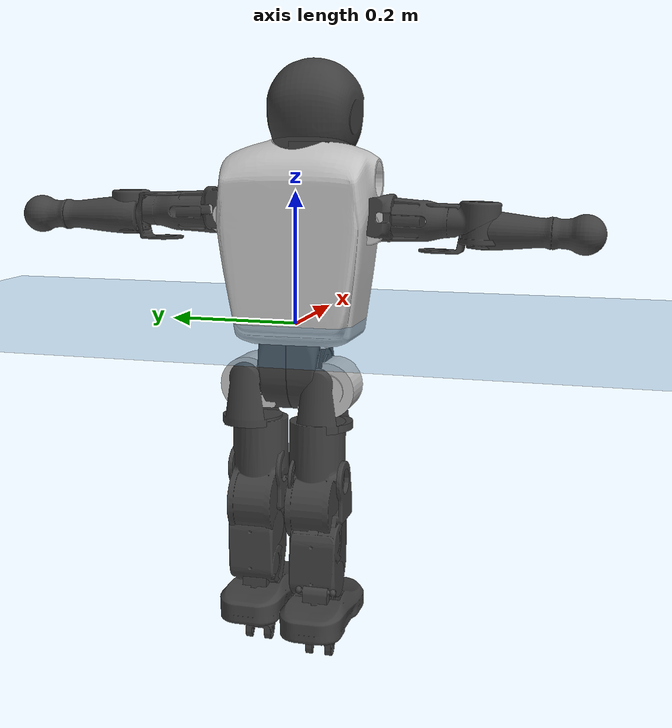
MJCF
<mujoco model="T1">
  <compiler angle="radian" assetdir="assets" balanceinertia="true" inertiafromgeom="false"/>

  <option timestep="0.005" density="1.2" viscosity="2e-05"/>

  <size nkey="1"/>

  <visual>
    <quality shadowsize="8192"/>
    <map shadowclip="0.5"/>
  </visual>

  <default>
    <default class="/">
      <joint armature="0.01" damping="0.01" frictionloss="0.1"/>
      <geom contype="0" conaffinity="0" group="1" solref="-1000 -80"/>
      <site size="0.01 0.005 0.005" group="5"/>
      <general forcelimited="true" biastype="affine" gainprm="25" biasprm="0 -25 -0.6"/>
      <default class="t1">
        <geom rgba="0.25 0.25 0.25 1"/>
        <default class="visual">
          <geom type="mesh" group="2"/>
        </default>
        <default class="collision">
          <geom group="3"/>
        </default>
        <default class="foot">
          <geom size="0.1115 0.05 0.015" type="box" condim="6" group="4" priority="1" solimp="0.015 1 0.015"/>
        </default>
        <default class="reward_collision_sphere">
          <geom group="5" rgba="1 0 0 1"/>
        </default>
      </default>
    </default>
  </default>

  <asset>
    <texture type="skybox" colorspace="auto" name="//unnamed_texture_0" builtin="gradient" rgb1="0.95 0.95 0.95" rgb2="0.95 0.95 0.95" width="100" height="600"/>
    <texture type="2d" colorspace="auto" name="texplane" builtin="checker" rgb1="0.345 0.575 0.748" rgb2="0.345 0.575 0.748" markrgb="1 1 1" width="512" height="512"/>
    <material name="MatPlane" class="/" texture="texplane" texuniform="true" texrepeat="2 2" specular="0.9"/>
    <mesh name="Trunk" class="/" file="Trunk.stl"/>
    <mesh name="H1" class="/" file="H1.stl"/>
    <mesh name="H2" class="/" file="H2.stl"/>
    <mesh name="AL1" class="/" file="AL1.stl"/>
    <mesh name="AL2" class="/" file="AL2.stl"/>
    <mesh name="AL3" class="/" file="AL3.stl"/>
    <mesh name="left_hand_link" class="/" file="left_hand_link.stl"/>
    <mesh name="AR1" class="/" file="AR1.stl"/>
    <mesh name="AR2" class="/" file="AR2.stl"/>
    <mesh name="AR3" class="/" file="AR3.stl"/>
    <mesh name="right_hand_link" class="/" file="right_hand_link.stl"/>
    <mesh name="Waist" class="/" file="Waist.stl"/>
    <mesh name="Hip_Pitch_Left" class="/" file="Hip_Pitch_Left.stl"/>
    <mesh name="Hip_Roll_Left" class="/" file="Hip_Roll_Left.stl"/>
    <mesh name="Hip_Yaw_Left" class="/" file="Hip_Yaw_Left.stl"/>
    <mesh name="Shank_Left" class="/" file="Shank_Left.stl"/>
    <mesh name="Ankle_Cross_Left" class="/" file="Ankle_Cross_Left.stl"/>
    <mesh name="left_foot_link" class="/" file="left_foot_link.stl"/>
    <mesh name="Hip_Pitch_Right" class="/" file="Hip_Pitch_Right.stl"/>
    <mesh name="Hip_Roll_Right" class="/" file="Hip_Roll_Right.stl"/>
    <mesh name="Hip_Yaw_Right" class="/" file="Hip_Yaw_Right.stl"/>
    <mesh name="Shank_Right" class="/" file="Shank_Right.stl"/>
    <mesh name="Ankle_Cross_Right" class="/" file="Ankle_Cross_Right.stl"/>
    <mesh name="right_foot_link" class="/" file="right_foot_link.stl"/>
  </asset>

  <worldbody>
    <geom name="floor" class="/" size="100 100 0.125" type="plane" group="0" material="MatPlane"/>
    <light name="toplight_shadow" class="/" pos="0 0 5" dir="0.0990148 0.0990148 -0.990148" type="directional" ambient="0.04 0.04 0.04" diffuse="0.55 0.55 0.55" specular="0.12 0.12 0.12"/>
    <light name="toplight_fill" class="/" pos="0 0 5" dir="0.0990148 0.0990148 -0.990148" type="directional" castshadow="false" ambient="0.04 0.04 0.04" diffuse="0.3 0.3 0.3" specular="0.08 0.08 0.08"/>
    <body name="trunk" childclass="t1" pos="-0.000757954 0.00585153 -0.00127092" quat="0.999983 -0.00229935 0.00506323 0.0016495">
      <inertial pos="0.055403 0.00945716 0.0779004" quat="0.999947 -0.00207625 -0.0100498 7.14439e-05" mass="4.84194" diaginertia="0.0401786 0.00783086 0.0101062"/>
      <joint name="//unnamed_joint_0" type="free" armature="0" damping="0" frictionloss="0"/>
      <geom name="//unnamed_geom_1" class="visual" rgba="0.76 0.76 0.76 1" mesh="Trunk"/>
      <geom name="//unnamed_geom_2" class="collision" size="0.0539002 0.0718669 0.1078" pos="0.0505942 0 0.082706" type="box"/>
      <geom name="//unnamed_geom_3" class="reward_collision_sphere" size="0.082647" pos="0.0505942 0 0.0689217"/>
      <geom name="//unnamed_geom_4" class="reward_collision_sphere" size="0.01078" pos="0.0505942 0.0530022 0"/>
      <geom name="//unnamed_geom_5" class="reward_collision_sphere" size="0.01078" pos="0.0505942 -0.0530022 0"/>
      <geom name="//unnamed_geom_6" class="reward_collision_sphere" size="0.01078" pos="0.0505942 0.0667204 0.124059"/>
      <geom name="//unnamed_geom_7" class="reward_collision_sphere" size="0.01078" pos="0.0505942 -0.0667204 0.124059"/>
      <site name="imu" pos="-0.0404279 -0.0108641 0.0405795" size="0.00718669"/>
      <camera name="track" pos="0 -1.24711 0" quat="0.707107 0.707107 0 0" mode="trackcom"/>
      <camera name="ego_camera" pos="0.102875 0 0.289471" quat="-0.5 -0.5 0.5 0.5"/>
      <body name="H1" pos="0.0566372 -0.00557253 0.164795" quat="0.999997 0.000452557 0.000631313 -0.00220967">
        <inertial pos="0.0058927 -0.0132857 0.0342219" quat="0.785045 -0.0194358 0.0460971 0.617416" mass="0.172222" diaginertia="0.000108293 2.3387e-05 2.99072e-05"/>
        <joint name="AAHead_yaw" pos="0 0 0" axis="-0.0427049 0.0381316 0.99836" range="-1.51152 1.59728" armature="0.00960143" damping="0" frictionloss="0.0669514"/>
        <geom name="//unnamed_geom_8" class="visual" mesh="H1"/>
        <body name="H2" pos="-0.00801164 -0.0117533 0.0463908" quat="1 0.000514849 -0.000290176 0.000140378">
          <inertial pos="0.00293532 -0.0101612 0.0709692" quat="0.988155 0.103615 -0.0798153 -0.0802657" mass="0.237417" diaginertia="0.000752914 0.000173694 0.000270521"/>
          <joint name="Head_pitch" pos="0 0 0" axis="-0.0115424 -0.999726 0.0203723" range="-1.24104 0.338773" armature="0.0113803" damping="0.00342351" frictionloss="0.0228917"/>
          <geom name="//unnamed_geom_9" class="visual" mesh="H2"/>
          <geom name="//unnamed_geom_10" class="collision" size="0.0574935" pos="0.00843236 0 0.0758139"/>
          <geom name="//unnamed_geom_11" class="reward_collision_sphere" size="0.0646802" pos="0.0168647 0 0.0689217"/>
        </body>
      </body>
      <body name="AL1" pos="0.0537742 0.067282 0.163093" quat="1 -0.000244717 0.000354594 0.000145715">
        <inertial pos="0.0113476 0.0278502 0.00172308" quat="0.504122 0.495428 -0.50422 0.496159" mass="0.19634" diaginertia="0.000602408 0.000122703 5.13285e-05"/>
        <joint name="Left_Shoulder_Pitch" pos="0 0 0" axis="0.0418869 0.998193 0.0430854" range="-3.2671 1.33935" armature="0.0077654" damping="0.00724042" frictionloss="0.0768916"/>
        <geom name="//unnamed_geom_12" class="visual" rgba="0.76 0.76 0.76 1" mesh="AL1"/>
        <body name="AL2" pos="7.36527e-06 0.0305344 0.00814188" quat="1 -3.21433e-05 0.000105521 0.000181851">
          <inertial pos="-0.00275121 0.0296645 0.00996157" quat="0.466111 0.539167 -0.463305 0.526676" mass="0.0574973" diaginertia="0.000168063 3.23197e-05 2.66555e-05"/>
          <joint name="Left_Shoulder_Roll" pos="0 0 0" axis="-0.999601 -0.0168674 0.0226633" range="-1.59147 1.72545" armature="0.00628031" damping="0" frictionloss="0.0667458"/>
          <geom name="//unnamed_geom_13" class="visual" mesh="AL2"/>
          <body name="AL3" pos="0.0011687 0.040166 -0.00464778" quat="1 6.96576e-05 -6.62221e-05 0.00045706">
            <inertial pos="0.0067024 0.0540252 -0.000576552" quat="0.699038 0.712548 -0.0322006 -0.0508338" mass="0.392347" diaginertia="0.00518934 0.00124422 0.000114979"/>
            <joint name="Left_Elbow_Pitch" pos="0 0 0" axis="-0.000373071 -0.999999 -0.00125866" range="-2.20203 2.29093" armature="0.00728908" damping="0" frictionloss="0.026937"/>
            <geom name="//unnamed_geom_14" class="visual" mesh="AL3"/>
            <geom name="//unnamed_geom_15" class="collision" size="0.0215601 0.0539002" pos="0 0.0311777 0" quat="0.707105 0.707108 0 0" type="cylinder"/>
            <geom name="//unnamed_geom_16" class="reward_collision_sphere" size="0.0258721"/>
            <body name="left_hand_link" pos="-0.0105627 0.0842087 -0.00745605" quat="1 -0.000429079 0.000258529 0.000525205">
              <inertial pos="-0.0107887 0.0763608 0.0106332" quat="0.699616 0.714386 0.00852624 0.0107926" mass="0.120395" diaginertia="0.00348212 0.000719719 2.95177e-05"/>
              <joint name="Left_Elbow_Yaw" pos="0 0 0" axis="-2.29524e-05 9.92127e-06 1" stiffness="0.0259556" range="-2.39269 0.0450531" armature="0.00420063" damping="0" frictionloss="0.0713612"/>
              <geom name="//unnamed_geom_17" class="visual" mesh="left_hand_link"/>
              <geom name="//unnamed_geom_18" class="collision" size="0.0215601 0.0628836" pos="0 0.0810621 0" quat="0.707105 0.707108 0 0" type="cylinder"/>
              <geom name="//unnamed_geom_19" class="reward_collision_sphere" size="0.0359335"/>
              <geom name="//unnamed_geom_20" class="reward_collision_sphere" size="0.0251534" pos="0 0.068591 0"/>
              <geom name="//unnamed_geom_21" class="reward_collision_sphere" size="0.0251534" pos="0 0.134064 0"/>
            </body>
          </body>
        </body>
      </body>
      <body name="AR1" pos="0.0449454 -0.0670427 0.152427" quat="0.999975 0.00628596 0.00307824 0.000463536">
        <inertial pos="-0.000893347 -0.0233861 -0.00498464" quat="0.502109 0.491629 -0.508393 0.497719" mass="0.169044" diaginertia="0.000550146 0.000103273 3.9229e-05"/>
        <joint name="Right_Shoulder_Pitch" pos="0 0 0" axis="-0.00834546 -0.99992 -0.00950779" stiffness="0.0016941" range="-1.36942 3.33479" armature="0.00845891" damping="0" frictionloss="0.0902432"/>
        <geom name="//unnamed_geom_22" class="visual" rgba="0.76 0.76 0.76 1" mesh="AR1"/>
        <body name="AR2" pos="-0.00428381 -0.0259431 0.0119239" quat="0.999988 0.00444909 0.00193539 -0.000125872">
          <inertial pos="0.00761073 -0.0278619 0.00351592" quat="0.506078 0.510632 -0.523764 0.456959" mass="0.0649558" diaginertia="0.000188697 3.30907e-05 2.96972e-05"/>
          <joint name="Right_Shoulder_Roll" pos="0 0 0" axis="-0.999173 0.00313931 0.0405334" stiffness="0.0376284" range="-1.632 1.68333" armature="0.00728585" damping="0.0537321" frictionloss="0.0741742"/>
          <geom name="//unnamed_geom_23" class="visual" mesh="AR2"/>
          <body name="AR3" pos="0.0069378 -0.0371237 -0.00424691" quat="0.999986 0.00369324 0.00114138 0.00365896">
            <inertial pos="-0.0135818 -0.0523498 -0.00461838" quat="0.707526 0.706644 -0.000255221 -0.00783864" mass="0.364286" diaginertia="0.00445089 0.00106707 8.72327e-05"/>
            <joint name="Right_Elbow_Pitch" pos="0 0 0" axis="0.0261379 0.999485 0.018625" stiffness="0.00493845" range="-2.18467 2.54957" armature="0.00690206" damping="0.00210802" frictionloss="0.0512964"/>
            <geom name="//unnamed_geom_24" class="visual" mesh="AR3"/>
            <geom name="//unnamed_geom_25" class="collision" size="0.0215601 0.0539002" pos="0 -0.0311777 0" quat="0.707105 0.707108 0 0" type="cylinder"/>
            <geom name="//unnamed_geom_26" class="reward_collision_sphere" size="0.0258721"/>
            <body name="right_hand_link" pos="0.00564841 -0.0841393 -0.0104297" quat="0.999988 -0.00132239 0.00355074 -0.00306031">
              <inertial pos="-0.0125516 -0.0720583 0.0112693" quat="0.711183 0.703003 0.00197001 -0.00161288" mass="0.135965" diaginertia="0.00475187 0.000976638 3.3257e-05"/>
              <joint name="Right_Elbow_Yaw" pos="0 0 0" axis="-0.000462518 -0.00173749 0.999998" stiffness="0.00627343" range="0.0132183 2.6526" armature="0.00846221" damping="0" frictionloss="0.0762859"/>
              <geom name="//unnamed_geom_27" class="visual" mesh="right_hand_link"/>
              <geom name="//unnamed_geom_28" class="collision" size="0.0215601 0.0628836" pos="0 -0.0810621 0" quat="0.707105 0.707108 0 0" type="cylinder"/>
              <geom name="//unnamed_geom_29" class="reward_collision_sphere" size="0.0359335"/>
              <geom name="//unnamed_geom_30" class="reward_collision_sphere" size="0.0251534" pos="0 -0.068591 0"/>
              <geom name="//unnamed_geom_31" class="reward_collision_sphere" size="0.0251534" pos="0 -0.134064 0"/>
            </body>
          </body>
        </body>
      </body>
      <body name="Waist" pos="0.061327 0.0107785 -0.0856007" quat="0.999997 -0.000456752 -0.000119802 0.00234774">
        <inertial pos="-2.43891e-05 -0.00938789 0.00603651" quat="0.979703 -0.0367523 -0.196839 -0.0092938" mass="1.17262" diaginertia="0.00259146 0.000588075 0.000893771"/>
        <joint name="Waist" pos="0 0 0" axis="-0.0103278 -0.0174999 0.999794" stiffness="0.0238005" range="-1.46633 1.66191" armature="0.00744733" damping="0.0686689" frictionloss="0.047591"/>
        <geom name="//unnamed_geom_32" class="visual" mesh="Waist"/>
        <body name="Hip_Pitch_Left" pos="-0.00667235 0.0691601 0.00294897" quat="1 0.000504167 -0.000159283 -0.000216118">
          <inertial pos="0.00556986 -0.00522294 -0.00147568" quat="0.975756 0.217876 0.00712419 0.0194748" mass="0.405388" diaginertia="0.000821553 0.00014651 0.000208193"/>
          <joint name="Left_Hip_Pitch" pos="0 0 0" axis="-0.0184232 0.999735 0.01382" range="-1.82752 1.36159" armature="0.0084157" damping="0.0484157" frictionloss="0.0762328"/>
          <geom name="//unnamed_geom_33" class="visual" rgba="0.76 0.76 0.76 1" mesh="Hip_Pitch_Left"/>
          <body name="Hip_Roll_Left" pos="-0.0111276 -0.00146139 -0.00647522" quat="1 0.000183908 0.000107164 -0.000117715">
            <inertial pos="0.00313859 0.000398185 -0.0271161" quat="0.709007 -0.0058927 -0.00729493 0.705139" mass="0.118572" diaginertia="0.000568208 0.000140048 7.93913e-05"/>
            <joint name="Left_Hip_Roll" pos="0 0 0" axis="-0.999681 -0.00693264 0.024288" stiffness="0.0549969" range="-1.47215 -0.0310876" armature="0.00718018" damping="0" frictionloss="0.0705389"/>
            <geom name="//unnamed_geom_34" class="visual" mesh="Hip_Roll_Left"/>
            <geom name="//unnamed_geom_35" class="reward_collision_sphere" size="0.0395268"/>
            <body name="Hip_Yaw_Left" pos="0.00394159 -0.0122271 -0.069186" quat="0.999999 0.000920958 -0.00025658 -0.000622958">
              <inertial pos="0.000351671 -0.000795743 -0.0655707" quat="0.661351 -0.0532232 -0.0386533 0.747186" mass="0.832478" diaginertia="0.00971132 0.00255345 0.000346812"/>
              <joint name="Left_Hip_Yaw" pos="0 0 0" axis="-0.00553033 0.00133557 -0.999984" range="-0.989194 0.731617" armature="0.00442585" damping="0.0788503" frictionloss="0.0769047"/>
              <geom name="//unnamed_geom_36" class="visual" mesh="Hip_Yaw_Left"/>
              <geom name="//unnamed_geom_37" class="collision" size="0.0359335 0.0574935" type="cylinder"/>
              <body name="Shank_Left" pos="-0.00730614 0.000327123 -0.0814238" quat="0.999996 -6.60121e-05 0.00198829 -0.00183762">
                <inertial pos="-0.00168378 -4.50515e-05 -0.0757311" quat="0.998048 -0.00391705 -0.0229846 0.0579279" mass="0.605873" diaginertia="0.014112 0.00373925 0.000345074"/>
                <joint name="Left_Knee_Pitch" pos="0 0 0" axis="-0.000316212 0.99996 0.008994" range="-0.133485 2.35714" armature="0.00694787" damping="0.0165331" frictionloss="0.0833075"/>
                <geom name="//unnamed_geom_38" class="visual" mesh="Shank_Left"/>
                <geom name="//unnamed_geom_39" class="collision" size="0.0359335 0.0539002" pos="0 0 -0.082706" type="cylinder"/>
                <geom name="//unnamed_geom_40" class="reward_collision_sphere" size="0.0467135"/>
                <body name="Ankle_Cross_Left" pos="0.00284131 0.00113999 -0.183727" quat="0.999999 -0.000809702 0.000788886 0.000206532">
                  <inertial pos="0.00846823 -0.0116071 -0.00470288" quat="0.443804 0.554794 0.551521 0.437111" mass="0.0305916" diaginertia="1.16208e-05 2.83748e-06 1.82071e-06"/>
                  <joint name="Left_Ankle_Pitch" pos="0 0 0" axis="0.0365162 0.99881 0.0323178" range="-0.720944 0.30594" armature="0.0110247" damping="0" frictionloss="0.0478654"/>
                  <geom name="//unnamed_geom_41" class="visual" mesh="Ankle_Cross_Left"/>
                  <body name="left_foot_link" pos="0.00119709 -0.00726773 -0.0180595" quat="0.99998 0.00037111 -0.0019409 -0.00601724">
                    <inertial pos="0.011326 0.00188527 -0.00199651" quat="0.0245649 0.624426 -0.019192 0.780462" mass="0.275779" diaginertia="0.00104912 0.000217601 0.000298002"/>
                    <joint name="Left_Ankle_Roll" pos="0 0 0" axis="-0.99999 0.00258303 0.00360757" stiffness="0.0515923" range="-0.220954 0.674583" armature="0.00458381" damping="0" frictionloss="0.112863"/>
                    <geom name="//unnamed_geom_42" class="visual" mesh="left_foot_link"/>
                    <geom name="left_foot" class="foot" size="0.0898725 0.0461193 0.0103333" pos="0.00843236 0 -0.0103383"/>
                    <geom name="//unnamed_geom_44" class="reward_collision_sphere" size="0.0373708" pos="0.00843236 0 -0.0103383"/>
                    <geom name="//unnamed_geom_45" class="reward_collision_sphere" size="0.0215601" pos="0.0801074 -0.0143418 -0.0103383"/>
                    <geom name="//unnamed_geom_46" class="reward_collision_sphere" size="0.0215601" pos="-0.0590265 -0.0143418 -0.0103383"/>
                    <site name="left_foot" class="foot" pos="0.00843236 0 -0.0103383" size="0.00718669"/>
                  </body>
                </body>
              </body>
            </body>
          </body>
        </body>
        <body name="Hip_Pitch_Right" pos="0.000225376 -0.0575355 -0.00218743" quat="0.999986 0.00399483 -0.00262301 0.00229488">
          <inertial pos="-0.00452658 0.0135922 -0.0195846" quat="0.973169 -0.229594 0.0139433 -0.0058635" mass="0.376813" diaginertia="0.000723938 0.00011787 0.000176181"/>
          <joint name="Right_Hip_Pitch" pos="0 0 0" axis="-0.00490686 -0.999979 0.00411468" range="-1.48612 1.78888" armature="0.00396465" damping="0.00506552" frictionloss="0.0893138"/>
          <geom name="//unnamed_geom_47" class="visual" rgba="0.76 0.76 0.76 1" mesh="Hip_Pitch_Right"/>
          <body name="Hip_Roll_Right" pos="-0.0122513 0.0102819 -0.00629708" quat="1 -0.000349062 0.000200361 0.000251176">
            <inertial pos="-0.00278786 -0.0043179 -0.0454211" quat="0.705281 -0.00454785 -0.00752097 0.708873" mass="0.111918" diaginertia="0.000685901 0.000116271 7.21379e-05"/>
            <joint name="Right_Hip_Roll" pos="0 0 0" axis="-0.999699 -0.0101046 -0.0223584" range="-0.198055 1.82706" armature="0.00711687" damping="0.0660647" frictionloss="0.115615"/>
            <geom name="//unnamed_geom_48" class="visual" mesh="Hip_Roll_Right"/>
            <geom name="//unnamed_geom_49" class="reward_collision_sphere" size="0.0395268"/>
            <body name="Hip_Yaw_Right" pos="-0.01175 0.00545537 -0.0634666" quat="0.999992 -0.00170271 -0.000607268 -0.0036893">
              <inertial pos="-0.00502239 0.00769844 -0.0692728" quat="0.748083 -0.0394813 0.0119112 0.662323" mass="0.757061" diaginertia="0.0126944 0.00218115 0.000465322"/>
              <joint name="Right_Hip_Yaw" pos="0 0 0" axis="-0.0666721 0.00356355 -0.997769" range="-1.04509 0.975112" armature="0.0108908" damping="0.000164509" frictionloss="0.0719525"/>
              <geom name="//unnamed_geom_50" class="visual" mesh="Hip_Yaw_Right"/>
              <geom name="//unnamed_geom_51" class="collision" size="0.0359335 0.0574935" type="cylinder"/>
              <body name="Shank_Right" pos="-0.0237757 -0.0094723 -0.0892549" quat="0.999994 -0.00240155 -0.00141606 -0.00221134">
                <inertial pos="-0.0110244 0.00113524 -0.0867826" quat="0.995505 -0.0275006 -0.0658286 -0.0622853" mass="0.746877" diaginertia="0.0139888 0.00341803 0.000294106"/>
                <joint name="Right_Knee_Pitch" pos="0 0 0" axis="0.0177428 -0.999435 0.0285549" stiffness="0.0618298" range="-2.37277 -0.155927" armature="0.00750406" damping="0" frictionloss="0.0702277"/>
                <geom name="//unnamed_geom_52" class="visual" mesh="Shank_Right"/>
                <geom name="//unnamed_geom_53" class="collision" size="0.0359335 0.0539002" pos="0 0 -0.082706" type="cylinder"/>
                <geom name="//unnamed_geom_54" class="reward_collision_sphere" size="0.0467135"/>
                <body name="Ankle_Cross_Right" pos="-0.00340809 -0.00804128 -0.184737" quat="0.999986 0.000238341 0.00469213 0.00223264">
                  <inertial pos="-0.00327075 -0.00938233 -0.00737323" quat="0.442123 0.550176 0.552052 0.443929" mass="0.0273601" diaginertia="1.44061e-05 2.37104e-06 1.94689e-06"/>
                  <joint name="Right_Ankle_Pitch" pos="0 0 0" axis="-0.0284894 -0.999189 0.0284547" range="-0.0756734 0.841334" armature="0.00797282" damping="0" frictionloss="0.075574"/>
                  <geom name="//unnamed_geom_55" class="visual" mesh="Ankle_Cross_Right"/>
                  <body name="right_foot_link" pos="-0.00914823 -0.000415393 -0.0126524" quat="1 0.000456219 0.000284929 -0.000284743">
                    <inertial pos="-0.000468349 -0.00937326 -0.00510432" quat="-0.0209673 0.626732 -0.0179042 0.778747" mass="0.184526" diaginertia="0.00104082 0.000199948 0.000284431"/>
                    <joint name="Right_Ankle_Roll" pos="0 0 0" axis="-0.999917 0.00644694 0.0111784" range="-0.411958 0.571748" armature="0.00686406" damping="0" frictionloss="0.11706"/>
                    <geom name="//unnamed_geom_56" class="visual" mesh="right_foot_link"/>
                    <geom name="right_foot" class="foot" size="0.110615 0.0317859 0.0112795" pos="0.00843236 0 -0.0103383"/>
                    <geom name="//unnamed_geom_58" class="reward_collision_sphere" size="0.0287468"/>
                    <geom name="//unnamed_geom_59" class="reward_collision_sphere" size="0.0215601" pos="0.00843236 0 -0.0103383"/>
                    <geom name="//unnamed_geom_60" class="reward_collision_sphere" size="0.0215601" pos="0.0801074 0.0143418 -0.0103383"/>
                    <geom name="//unnamed_geom_61" class="reward_collision_sphere" size="0.0215601" pos="-0.0590265 0.0143418 -0.0103383"/>
                    <site name="right_foot" class="foot" pos="0.00843236 0 -0.0103383" size="0.00718669"/>
                  </body>
                </body>
              </body>
            </body>
          </body>
        </body>
      </body>
    </body>
  </worldbody>

  <contact>
    <pair class="/" geom1="floor" geom2="left_foot" name="//unnamed_contact_0"/>
    <pair class="/" geom1="floor" geom2="right_foot" name="//unnamed_contact_1"/>
  </contact>

  <actuator>
    <general name="AAHead_yaw" class="/" joint="AAHead_yaw" forcerange="-5.67503 5.67503" gainprm="23.7421" biasprm="0 -23.7421 -0.361247"/>
    <general name="Head_pitch" class="/" joint="Head_pitch" forcerange="-4.39137 4.39137" gainprm="23.7421" biasprm="0 -23.7421 -0.361247"/>
    <general name="Left_Shoulder_Pitch" class="/" joint="Left_Shoulder_Pitch" forcerange="-19.6141 19.6141" gainprm="23.7421" biasprm="0 -23.7421 -0.361247"/>
    <general name="Left_Shoulder_Roll" class="/" joint="Left_Shoulder_Roll" forcerange="-11.9932 11.9932" gainprm="23.7421" biasprm="0 -23.7421 -0.361247"/>
    <general name="Left_Elbow_Pitch" class="/" joint="Left_Elbow_Pitch" forcerange="-15.7479 15.7479" gainprm="23.7421" biasprm="0 -23.7421 -0.361247"/>
    <general name="Left_Elbow_Yaw" class="/" joint="Left_Elbow_Yaw" forcerange="-12.5113 12.5113" gainprm="23.7421" biasprm="0 -23.7421 -0.361247"/>
    <general name="Right_Shoulder_Pitch" class="/" joint="Right_Shoulder_Pitch" forcerange="-13.77 13.77" gainprm="23.7421" biasprm="0 -23.7421 -0.361247"/>
    <general name="Right_Shoulder_Roll" class="/" joint="Right_Shoulder_Roll" forcerange="-13.4331 13.4331" gainprm="23.7421" biasprm="0 -23.7421 -0.361247"/>
    <general name="Right_Elbow_Pitch" class="/" joint="Right_Elbow_Pitch" forcerange="-16.0822 16.0822" gainprm="23.7421" biasprm="0 -23.7421 -0.361247"/>
    <general name="Right_Elbow_Yaw" class="/" joint="Right_Elbow_Yaw" forcerange="-16.0218 16.0218" gainprm="23.7421" biasprm="0 -23.7421 -0.361247"/>
    <general name="Waist" class="/" joint="Waist" forcerange="-26.6669 26.6669" gainprm="23.7421" biasprm="0 -23.7421 -0.361247"/>
    <general name="Left_Hip_Pitch" class="/" joint="Left_Hip_Pitch" forcerange="-31.8673 31.8673" gainprm="23.7421" biasprm="0 -23.7421 -0.361247"/>
    <general name="Left_Hip_Roll" class="/" joint="Left_Hip_Roll" forcerange="-26.3762 26.3762" gainprm="23.7421" biasprm="0 -23.7421 -0.361247"/>
    <general name="Left_Hip_Yaw" class="/" joint="Left_Hip_Yaw" forcerange="-26.519 26.519" gainprm="23.7421" biasprm="0 -23.7421 -0.361247"/>
    <general name="Left_Knee_Pitch" class="/" joint="Left_Knee_Pitch" forcerange="-35.299 35.299" gainprm="23.7421" biasprm="0 -23.7421 -0.361247"/>
    <general name="Left_Ankle_Pitch" class="/" joint="Left_Ankle_Pitch" forcerange="-7.80593 7.80593" gainprm="23.7421" biasprm="0 -23.7421 -0.361247"/>
    <general name="Left_Ankle_Roll" class="/" joint="Left_Ankle_Roll" forcerange="-15.1851 15.1851" gainprm="23.7421" biasprm="0 -23.7421 -0.361247"/>
    <general name="Right_Hip_Pitch" class="/" joint="Right_Hip_Pitch" forcerange="-33.4939 33.4939" gainprm="23.7421" biasprm="0 -23.7421 -0.361247"/>
    <general name="Right_Hip_Roll" class="/" joint="Right_Hip_Roll" forcerange="-12.6679 12.6679" gainprm="23.7421" biasprm="0 -23.7421 -0.361247"/>
    <general name="Right_Hip_Yaw" class="/" joint="Right_Hip_Yaw" forcerange="-28.7364 28.7364" gainprm="23.7421" biasprm="0 -23.7421 -0.361247"/>
    <general name="Right_Knee_Pitch" class="/" joint="Right_Knee_Pitch" forcerange="-55.6825 55.6825" gainprm="23.7421" biasprm="0 -23.7421 -0.361247"/>
    <general name="Right_Ankle_Pitch" class="/" joint="Right_Ankle_Pitch" forcerange="-13.9171 13.9171" gainprm="23.7421" biasprm="0 -23.7421 -0.361247"/>
    <general name="Right_Ankle_Roll" class="/" joint="Right_Ankle_Roll" forcerange="-6.76878 6.76878" gainprm="23.7421" biasprm="0 -23.7421 -0.361247"/>
  </actuator>

  <sensor>
    <gyro site="imu" name="imu_angular_velocity"/>
    <velocimeter site="imu" name="imu_linear_velocity"/>
    <framelinvel objtype="site" objname="left_foot" name="left_foot_global_linear_velocity"/>
    <framelinvel objtype="site" objname="right_foot" name="right_foot_global_linear_velocity"/>
  </sensor>

  <keyframe>
    <key name="home" qpos="0 0 0.6385 1 0 0 0 0 0 0 1.4 0 -0.4 0 -1.4 0 0.4 0 -0.4 0 0 0.8 -0.4 0 0.4 0 0 -0.8 0.4 0"/>
  </keyframe>
</mujoco>
